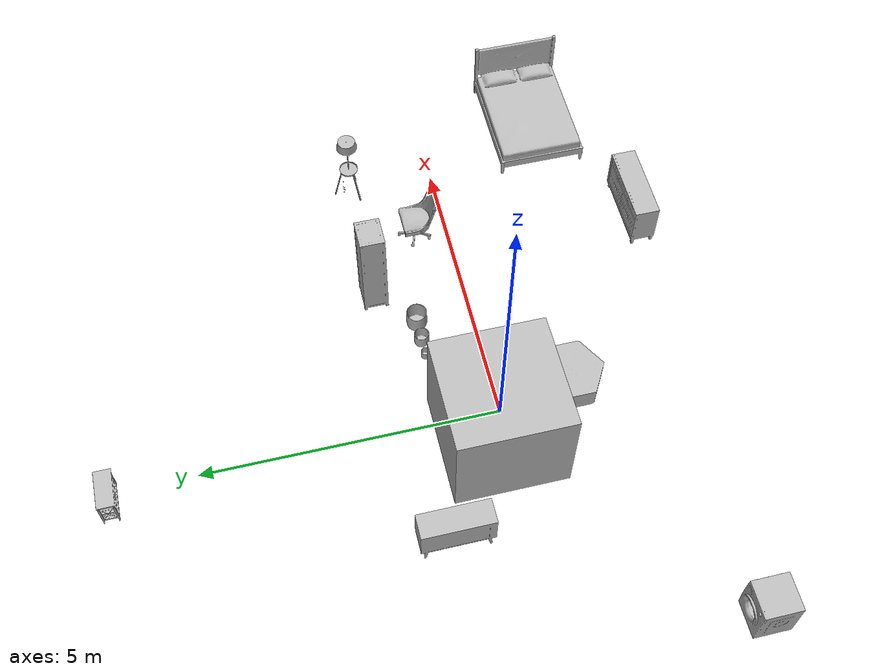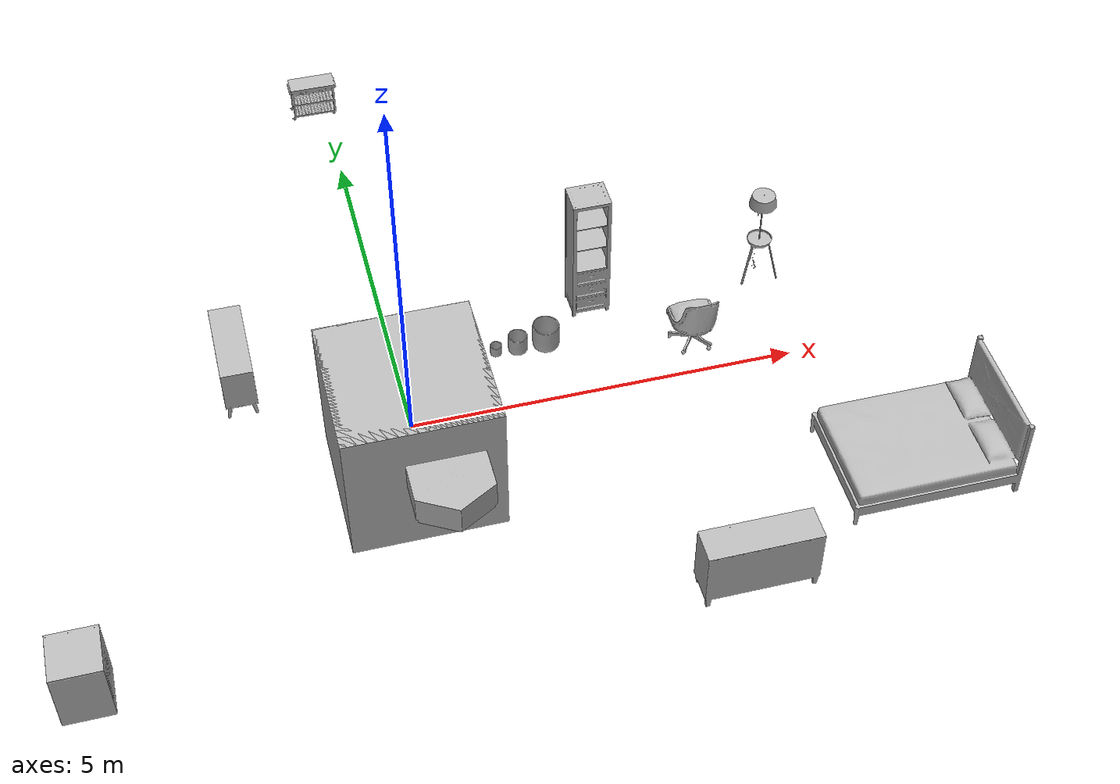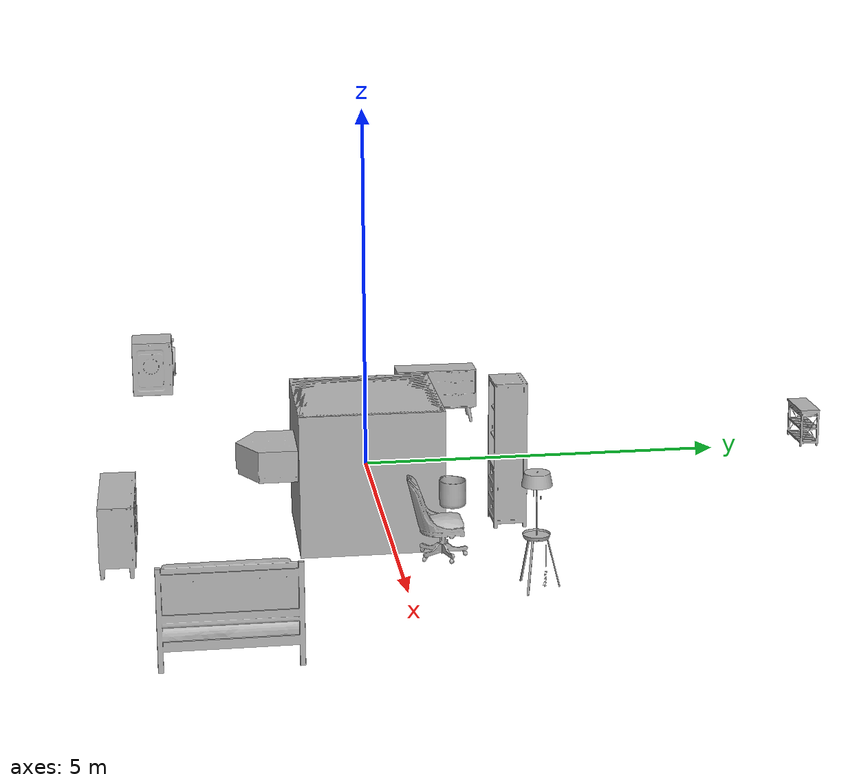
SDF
<sdf version="1.6">
 <world name="generation_vcmjltr6nh36_world_1">
  <include><uri>model://sun</uri></include>
  <model name="Beds_O1ebe36c65561_lod0_0">
   <include>
    <uri>model://Beds_O1ebe36c65561_lod0</uri>
    <pose>5.850100255012513 -2.100004768371582 0.0 0.0 0.0 4.71</pose>
    <static>true</static>
   </include>
  </model>
  <model name="HomeOfficeDeskChairs_Ocb2e8b1d1141_lod0_4">
   <include>
    <uri>model://HomeOfficeDeskChairs_Ocb2e8b1d1141_lod0</uri>
    <pose>3.8479110658168794 0.5558768510818481 0.0 0.0 0.0 3.1399999999999997</pose>
    <static>true</static>
   </include>
  </model>
  <model name="Bookcases_O2e667bbe14a2_lod0_7">
   <include>
    <uri>model://Bookcases_O2e667bbe14a2_lod0</uri>
    <pose>2.7 1.5500235363841057 0.0 0.0 0.0 0.0</pose>
    <static>true</static>
   </include>
  </model>
  <model name="Dressers_O8ca5eacdbd08_lod0_8">
   <include>
    <uri>model://Dressers_O8ca5eacdbd08_lod0</uri>
    <pose>3.4000000000000004 -3.3536212876439095 0.0 0.0 0.0 3.14</pose>
    <static>true</static>
   </include>
  </model>
  <model name="FloorLamps_O522eadaec3d5_lod0_10">
   <include>
    <uri>model://FloorLamps_O522eadaec3d5_lod0</uri>
    <pose>5.050667929649354 1.4976593434810639 0.0 0.0 0.0 0.0</pose>
    <static>true</static>
   </include>
  </model>
  <model name="CoffeeTables_Ob665b83f5366_lod0_12">
   <include>
    <uri>model://CoffeeTables_Ob665b83f5366_lod0</uri>
    <pose>0.25 -1.2499999701976776 0.0 0.0 0.0 0.0</pose>
    <static>true</static>
   </include>
  </model>
  <model name="AudioVideoMediaCabinets_Ocad952f94422_lod0_14">
   <include>
    <uri>model://AudioVideoMediaCabinets_Ocad952f94422_lod0</uri>
    <pose>-2.000070981681347 1.2500144243240356 0.0 0.0 0.0 1.57</pose>
    <static>true</static>
   </include>
  </model>
  <model name="HomeStorageBasketsBinsAndContainers_O45832f40a099_lod0_18">
   <include>
    <uri>model://HomeStorageBasketsBinsAndContainers_O45832f40a099_lod0</uri>
    <pose>1.6999870955944063 0.9503921389579774 0.0 0.0 0.0 4.71</pose>
    <static>true</static>
   </include>
  </model>
  <model name="ClothesWasher_a41462611906_lod0_21">
   <include>
    <uri>model://ClothesWasher_a41462611906_lod0</uri>
    <pose>-4.249838054180145 -2.9957533448934557 0.0 0.0 0.0 3.14</pose>
    <static>true</static>
   </include>
  </model>
  <model name="KitchenIslandsAndCarts_Of14cb38f9a68_lod0_25">
   <include>
    <uri>model://KitchenIslandsAndCarts_Of14cb38f9a68_lod0</uri>
    <pose>-0.16666080951690676 6.414728300273419 0.0 0.0 0.0 0.0</pose>
    <static>true</static>
   </include>
  </model>
  <model name="wall_0">
   <include><uri>model://generation_vcmjltr6nh36_world_1/wall_0</uri><static>true</static></include>
  </model>
  <model name="wall_1">
   <include><uri>model://generation_vcmjltr6nh36_world_1/wall_1</uri><static>true</static></include>
  </model>
  <model name="wall_10">
   <include><uri>model://generation_vcmjltr6nh36_world_1/wall_10</uri><static>true</static></include>
  </model>
  <model name="wall_11">
   <include><uri>model://generation_vcmjltr6nh36_world_1/wall_11</uri><static>true</static></include>
  </model>
  <model name="wall_12">
   <include><uri>model://generation_vcmjltr6nh36_world_1/wall_12</uri><static>true</static></include>
  </model>
  <model name="wall_13">
   <include><uri>model://generation_vcmjltr6nh36_world_1/wall_13</uri><static>true</static></include>
  </model>
  <model name="wall_14">
   <include><uri>model://generation_vcmjltr6nh36_world_1/wall_14</uri><static>true</static></include>
  </model>
  <model name="wall_15">
   <include><uri>model://generation_vcmjltr6nh36_world_1/wall_15</uri><static>true</static></include>
  </model>
  <model name="floor_Bedroom">
   <include><uri>model://generation_vcmjltr6nh36_world_1/floor_Bedroom</uri><static>true</static></include>
  </model>
  <model name="floor_Living room">
   <include><uri>model://generation_vcmjltr6nh36_world_1/floor_Living room</uri><static>true</static></include>
  </model>
  <model name="floor_Bathroom">
   <include><uri>model://generation_vcmjltr6nh36_world_1/floor_Bathroom</uri><static>true</static></include>
  </model>
  <model name="floor_Kitchen">
   <include><uri>model://generation_vcmjltr6nh36_world_1/floor_Kitchen</uri><static>true</static></include>
  </model>
 </world>
</sdf>

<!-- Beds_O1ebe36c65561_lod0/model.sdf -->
<sdf version="1.6">
	<model name="Beds_O1ebe36c65561_lod0">
		<link name="main_link">
			<visual name="visual_RootNode">
				<geometry>
					<mesh>
						<uri>model://Beds_O1ebe36c65561_lod0/meshes/visual_RootNode.dae</uri>
					</mesh>
				</geometry>
			</visual>
			<collision name="collision_RootNode_lod0_0">
				<geometry>
					<mesh>
						<uri>model://Beds_O1ebe36c65561_lod0/meshes/collision_RootNode_lod0_0.dae</uri>
					</mesh>
				</geometry>
			</collision>
		</link>
	</model>
</sdf>

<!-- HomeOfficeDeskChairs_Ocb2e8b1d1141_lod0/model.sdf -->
<sdf version="1.6">
	<model name="HomeOfficeDeskChairs_Ocb2e8b1d1141_lod0">
		<link name="main_link">
			<visual name="visual_RootNode">
				<geometry>
					<mesh>
						<uri>model://HomeOfficeDeskChairs_Ocb2e8b1d1141_lod0/meshes/visual_RootNode.dae</uri>
					</mesh>
				</geometry>
			</visual>
			<collision name="collision_RootNode_lod0_0">
				<geometry>
					<mesh>
						<uri>model://HomeOfficeDeskChairs_Ocb2e8b1d1141_lod0/meshes/collision_RootNode_lod0_0.dae</uri>
					</mesh>
				</geometry>
			</collision>
		</link>
	</model>
</sdf>

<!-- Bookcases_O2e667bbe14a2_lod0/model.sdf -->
<sdf version="1.6">
	<model name="Bookcases_O2e667bbe14a2_lod0">
		<link name="main_link">
			<visual name="visual_RootNode">
				<geometry>
					<mesh>
						<uri>model://Bookcases_O2e667bbe14a2_lod0/meshes/visual_RootNode.dae</uri>
					</mesh>
				</geometry>
			</visual>
			<collision name="collision_RootNode_lod0_0">
				<geometry>
					<mesh>
						<uri>model://Bookcases_O2e667bbe14a2_lod0/meshes/collision_RootNode_lod0_0.dae</uri>
					</mesh>
				</geometry>
			</collision>
		</link>
	</model>
</sdf>

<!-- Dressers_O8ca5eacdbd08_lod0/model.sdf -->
<sdf version="1.6">
	<model name="Dressers_O8ca5eacdbd08_lod0">
		<link name="main_link">
			<visual name="visual_RootNode">
				<geometry>
					<mesh>
						<uri>model://Dressers_O8ca5eacdbd08_lod0/meshes/visual_RootNode.dae</uri>
					</mesh>
				</geometry>
			</visual>
			<collision name="collision_RootNode_lod0_0">
				<geometry>
					<mesh>
						<uri>model://Dressers_O8ca5eacdbd08_lod0/meshes/collision_RootNode_lod0_0.dae</uri>
					</mesh>
				</geometry>
			</collision>
		</link>
	</model>
</sdf>

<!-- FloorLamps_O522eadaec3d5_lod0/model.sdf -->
<sdf version="1.6">
	<model name="FloorLamps_O522eadaec3d5_lod0">
		<link name="main_link">
			<visual name="visual_RootNode">
				<geometry>
					<mesh>
						<uri>model://FloorLamps_O522eadaec3d5_lod0/meshes/visual_RootNode.dae</uri>
					</mesh>
				</geometry>
			</visual>
			<collision name="collision_RootNode_lod0_0">
				<geometry>
					<mesh>
						<uri>model://FloorLamps_O522eadaec3d5_lod0/meshes/collision_RootNode_lod0_0.dae</uri>
					</mesh>
				</geometry>
			</collision>
		</link>
	</model>
</sdf>

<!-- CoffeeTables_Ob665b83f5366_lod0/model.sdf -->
<sdf version="1.6">
	<model name="CoffeeTables_Ob665b83f5366_lod0">
		<link name="main_link">
			<visual name="visual_RootNode">
				<geometry>
					<mesh>
						<uri>model://CoffeeTables_Ob665b83f5366_lod0/meshes/visual_RootNode.dae</uri>
					</mesh>
				</geometry>
			</visual>
			<collision name="collision_RootNode_lod0_0">
				<geometry>
					<mesh>
						<uri>model://CoffeeTables_Ob665b83f5366_lod0/meshes/collision_RootNode_lod0_0.dae</uri>
					</mesh>
				</geometry>
			</collision>
		</link>
	</model>
</sdf>

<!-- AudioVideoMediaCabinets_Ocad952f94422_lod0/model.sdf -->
<sdf version="1.6">
	<model name="AudioVideoMediaCabinets_Ocad952f94422_lod0">
		<link name="main_link">
			<visual name="visual_RootNode">
				<geometry>
					<mesh>
						<uri>model://AudioVideoMediaCabinets_Ocad952f94422_lod0/meshes/visual_RootNode.dae</uri>
					</mesh>
				</geometry>
			</visual>
			<collision name="collision_RootNode_lod0_0">
				<geometry>
					<mesh>
						<uri>model://AudioVideoMediaCabinets_Ocad952f94422_lod0/meshes/collision_RootNode_lod0_0.dae</uri>
					</mesh>
				</geometry>
			</collision>
		</link>
	</model>
</sdf>

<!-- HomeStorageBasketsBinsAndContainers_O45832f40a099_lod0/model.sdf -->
<sdf version="1.6">
	<model name="HomeStorageBasketsBinsAndContainers_O45832f40a099_lod0">
		<link name="main_link">
			<visual name="visual_RootNode">
				<geometry>
					<mesh>
						<uri>model://HomeStorageBasketsBinsAndContainers_O45832f40a099_lod0/meshes/visual_RootNode.dae</uri>
					</mesh>
				</geometry>
			</visual>
			<collision name="collision_RootNode_lod0_0">
				<geometry>
					<mesh>
						<uri>model://HomeStorageBasketsBinsAndContainers_O45832f40a099_lod0/meshes/collision_RootNode_lod0_0.dae</uri>
					</mesh>
				</geometry>
			</collision>
		</link>
	</model>
</sdf>

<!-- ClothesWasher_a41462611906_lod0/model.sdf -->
<sdf version='1.6'>
  <model name='17_ClothesWasher'>
    <link name='body'>
	  <inertial>
        <mass>60</mass>
        <pose frame=''>0 0 0 0 0 0</pose>
        <inertia>
          <ixx>5.8569999</ixx>
          <ixy>0</ixy>
          <ixz>0</ixz>
          <iyy>5.4125</iyy>
          <iyz>0</iyz>
          <izz>4.0445</izz>
        </inertia>
      </inertial>
      <pose frame=''>0 0 0 0 -0 0</pose>
      <self_collide>0</self_collide>
      <kinematic>0</kinematic>
      <gravity>1</gravity>
      <visual name='visual'>
        <geometry>
          <mesh>
            <uri>model://ClothesWasher_a41462611906_lod0/meshes/visual_LowPoly_17_ClothesWasher.dae</uri>
          </mesh>
        </geometry>
		<meta> <layer> 1 </layer></meta>
      </visual>
      <collision name='collision_0'>
        <laser_retro>0</laser_retro>
        <max_contacts>10</max_contacts>
        <pose frame=''>0 0 0 0 -0 0</pose>
        <geometry>
          <mesh>
            <uri>model://ClothesWasher_a41462611906_lod0/meshes/collision_17_ClothesWasher.dae</uri>
            <scale>1 1 1</scale>
          </mesh>
        </geometry>
		<surface>
          <friction>
            <ode>
              <mu>0.6</mu>
              <mu2>0.6</mu2>
              <fdir1>0 0 0</fdir1>
              <slip1>0</slip1>
              <slip2>0</slip2>
            </ode>
            <torsional>
              <coefficient>1</coefficient>
              <patch_radius>0</patch_radius>
              <surface_radius>0</surface_radius>
              <use_patch_radius>1</use_patch_radius>
              <ode>
                <slip>0</slip>
              </ode>
            </torsional>
          </friction>
        </surface>
      </collision>
    </link>
    <static>true</static>
  </model>
</sdf>

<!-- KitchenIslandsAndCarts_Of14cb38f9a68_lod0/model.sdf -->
<sdf version="1.6">
	<model name="KitchenIslandsAndCarts_Of14cb38f9a68_lod0">
		<link name="main_link">
			<visual name="visual_RootNode">
				<geometry>
					<mesh>
						<uri>model://KitchenIslandsAndCarts_Of14cb38f9a68_lod0/meshes/visual_RootNode.dae</uri>
					</mesh>
				</geometry>
			</visual>
			<collision name="collision_RootNode_lod0_0">
				<geometry>
					<mesh>
						<uri>model://KitchenIslandsAndCarts_Of14cb38f9a68_lod0/meshes/collision_RootNode_lod0_0.dae</uri>
					</mesh>
				</geometry>
			</collision>
		</link>
	</model>
</sdf>

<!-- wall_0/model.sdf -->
<sdf version="1.6">
  <model name="wall_0">
    <static>true</static>
    <link name="link">
      <collision name="collision">
        <pose>0 0 0 0 0 0</pose>
        <geometry>
          <mesh>
            <uri>model://generation_vcmjltr6nh36_world_1/wall_0/meshes/wall_0.dae</uri>
            <scale>1 1 1</scale>
          </mesh>
        </geometry>
      </collision>
      <visual name="visual">
        <meta>
          <layer>0</layer>
        </meta>
        <pose>0 0 0 0 0 0</pose>
        <geometry>
          <mesh>
            <uri>model://generation_vcmjltr6nh36_world_1/wall_0/meshes/wall_0.dae</uri>
            <scale>1 1 1</scale>
          </mesh>
        </geometry>
      </visual>
    </link>
  </model>
</sdf>

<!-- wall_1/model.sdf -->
<sdf version="1.6">
  <model name="wall_1">
    <static>true</static>
    <link name="link">
      <collision name="collision">
        <pose>0 0 0 0 0 0</pose>
        <geometry>
          <mesh>
            <uri>model://generation_vcmjltr6nh36_world_1/wall_1/meshes/wall_1.dae</uri>
            <scale>1 1 1</scale>
          </mesh>
        </geometry>
      </collision>
      <visual name="visual">
        <meta>
          <layer>0</layer>
        </meta>
        <pose>0 0 0 0 0 0</pose>
        <geometry>
          <mesh>
            <uri>model://generation_vcmjltr6nh36_world_1/wall_1/meshes/wall_1.dae</uri>
            <scale>1 1 1</scale>
          </mesh>
        </geometry>
      </visual>
    </link>
  </model>
</sdf>

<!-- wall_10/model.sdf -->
<sdf version="1.6">
  <model name="wall_10">
    <static>true</static>
    <link name="link">
      <collision name="collision">
        <pose>0 0 0 0 0 0</pose>
        <geometry>
          <mesh>
            <uri>model://generation_vcmjltr6nh36_world_1/wall_10/meshes/wall_10.dae</uri>
            <scale>1 1 1</scale>
          </mesh>
        </geometry>
      </collision>
      <visual name="visual">
        <meta>
          <layer>0</layer>
        </meta>
        <pose>0 0 0 0 0 0</pose>
        <geometry>
          <mesh>
            <uri>model://generation_vcmjltr6nh36_world_1/wall_10/meshes/wall_10.dae</uri>
            <scale>1 1 1</scale>
          </mesh>
        </geometry>
      </visual>
    </link>
  </model>
</sdf>

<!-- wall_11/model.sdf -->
<sdf version="1.6">
  <model name="wall_11">
    <static>true</static>
    <link name="link">
      <collision name="collision">
        <pose>0 0 0 0 0 0</pose>
        <geometry>
          <mesh>
            <uri>model://generation_vcmjltr6nh36_world_1/wall_11/meshes/wall_11.dae</uri>
            <scale>1 1 1</scale>
          </mesh>
        </geometry>
      </collision>
      <visual name="visual">
        <meta>
          <layer>0</layer>
        </meta>
        <pose>0 0 0 0 0 0</pose>
        <geometry>
          <mesh>
            <uri>model://generation_vcmjltr6nh36_world_1/wall_11/meshes/wall_11.dae</uri>
            <scale>1 1 1</scale>
          </mesh>
        </geometry>
      </visual>
    </link>
  </model>
</sdf>

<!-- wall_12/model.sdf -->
<sdf version="1.6">
  <model name="wall_12">
    <static>true</static>
    <link name="link">
      <collision name="collision">
        <pose>0 0 0 0 0 0</pose>
        <geometry>
          <mesh>
            <uri>model://generation_vcmjltr6nh36_world_1/wall_12/meshes/wall_12.dae</uri>
            <scale>1 1 1</scale>
          </mesh>
        </geometry>
      </collision>
      <visual name="visual">
        <meta>
          <layer>0</layer>
        </meta>
        <pose>0 0 0 0 0 0</pose>
        <geometry>
          <mesh>
            <uri>model://generation_vcmjltr6nh36_world_1/wall_12/meshes/wall_12.dae</uri>
            <scale>1 1 1</scale>
          </mesh>
        </geometry>
      </visual>
    </link>
  </model>
</sdf>

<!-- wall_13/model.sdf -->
<sdf version="1.6">
  <model name="wall_13">
    <static>true</static>
    <link name="link">
      <collision name="collision">
        <pose>0 0 0 0 0 0</pose>
        <geometry>
          <mesh>
            <uri>model://generation_vcmjltr6nh36_world_1/wall_13/meshes/wall_13.dae</uri>
            <scale>1 1 1</scale>
          </mesh>
        </geometry>
      </collision>
      <visual name="visual">
        <meta>
          <layer>0</layer>
        </meta>
        <pose>0 0 0 0 0 0</pose>
        <geometry>
          <mesh>
            <uri>model://generation_vcmjltr6nh36_world_1/wall_13/meshes/wall_13.dae</uri>
            <scale>1 1 1</scale>
          </mesh>
        </geometry>
      </visual>
    </link>
  </model>
</sdf>

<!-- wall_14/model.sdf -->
<sdf version="1.6">
  <model name="wall_14">
    <static>true</static>
    <link name="link">
      <collision name="collision">
        <pose>0 0 0 0 0 0</pose>
        <geometry>
          <mesh>
            <uri>model://generation_vcmjltr6nh36_world_1/wall_14/meshes/wall_14.dae</uri>
            <scale>1 1 1</scale>
          </mesh>
        </geometry>
      </collision>
      <visual name="visual">
        <meta>
          <layer>0</layer>
        </meta>
        <pose>0 0 0 0 0 0</pose>
        <geometry>
          <mesh>
            <uri>model://generation_vcmjltr6nh36_world_1/wall_14/meshes/wall_14.dae</uri>
            <scale>1 1 1</scale>
          </mesh>
        </geometry>
      </visual>
    </link>
  </model>
</sdf>

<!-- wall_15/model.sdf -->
<sdf version="1.6">
  <model name="wall_15">
    <static>true</static>
    <link name="link">
      <collision name="collision">
        <pose>0 0 0 0 0 0</pose>
        <geometry>
          <mesh>
            <uri>model://generation_vcmjltr6nh36_world_1/wall_15/meshes/wall_15.dae</uri>
            <scale>1 1 1</scale>
          </mesh>
        </geometry>
      </collision>
      <visual name="visual">
        <meta>
          <layer>0</layer>
        </meta>
        <pose>0 0 0 0 0 0</pose>
        <geometry>
          <mesh>
            <uri>model://generation_vcmjltr6nh36_world_1/wall_15/meshes/wall_15.dae</uri>
            <scale>1 1 1</scale>
          </mesh>
        </geometry>
      </visual>
    </link>
  </model>
</sdf>

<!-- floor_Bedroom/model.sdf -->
<sdf version="1.6">
  <model name="floor_Bedroom">
    <static>true</static>
    <link name="link">
      <collision name="collision">
        <pose>0 0 0 0 0 0</pose>
        <geometry>
          <mesh>
            <uri>model://generation_vcmjltr6nh36_world_1/floor_Bedroom/meshes/floor_Bedroom.dae</uri>
            <scale>1 1 1</scale>
          </mesh>
        </geometry>
      </collision>
      <visual name="visual">
        <meta>
          <layer>0</layer>
        </meta>
        <pose>0 0 0 0 0 0</pose>
        <geometry>
          <mesh>
            <uri>model://generation_vcmjltr6nh36_world_1/floor_Bedroom/meshes/floor_Bedroom.dae</uri>
            <scale>1 1 1</scale>
          </mesh>
        </geometry>
      </visual>
    </link>
  </model>
</sdf>

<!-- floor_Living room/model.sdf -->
<sdf version="1.6">
  <model name="floor_Living room">
    <static>true</static>
    <link name="link">
      <collision name="collision">
        <pose>0 0 0 0 0 0</pose>
        <geometry>
          <mesh>
            <uri>model://generation_vcmjltr6nh36_world_1/floor_Living room/meshes/floor_Living room.dae</uri>
            <scale>1 1 1</scale>
          </mesh>
        </geometry>
      </collision>
      <visual name="visual">
        <meta>
          <layer>0</layer>
        </meta>
        <pose>0 0 0 0 0 0</pose>
        <geometry>
          <mesh>
            <uri>model://generation_vcmjltr6nh36_world_1/floor_Living room/meshes/floor_Living room.dae</uri>
            <scale>1 1 1</scale>
          </mesh>
        </geometry>
      </visual>
    </link>
  </model>
</sdf>

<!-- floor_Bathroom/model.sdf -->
<sdf version="1.6">
  <model name="floor_Bathroom">
    <static>true</static>
    <link name="link">
      <collision name="collision">
        <pose>0 0 0 0 0 0</pose>
        <geometry>
          <mesh>
            <uri>model://generation_vcmjltr6nh36_world_1/floor_Bathroom/meshes/floor_Bathroom.dae</uri>
            <scale>1 1 1</scale>
          </mesh>
        </geometry>
      </collision>
      <visual name="visual">
        <meta>
          <layer>0</layer>
        </meta>
        <pose>0 0 0 0 0 0</pose>
        <geometry>
          <mesh>
            <uri>model://generation_vcmjltr6nh36_world_1/floor_Bathroom/meshes/floor_Bathroom.dae</uri>
            <scale>1 1 1</scale>
          </mesh>
        </geometry>
      </visual>
    </link>
  </model>
</sdf>

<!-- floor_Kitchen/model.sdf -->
<sdf version="1.6">
  <model name="floor_Kitchen">
    <static>true</static>
    <link name="link">
      <collision name="collision">
        <pose>0 0 0 0 0 0</pose>
        <geometry>
          <mesh>
            <uri>model://generation_vcmjltr6nh36_world_1/floor_Kitchen/meshes/floor_Kitchen.dae</uri>
            <scale>1 1 1</scale>
          </mesh>
        </geometry>
      </collision>
      <visual name="visual">
        <meta>
          <layer>0</layer>
        </meta>
        <pose>0 0 0 0 0 0</pose>
        <geometry>
          <mesh>
            <uri>model://generation_vcmjltr6nh36_world_1/floor_Kitchen/meshes/floor_Kitchen.dae</uri>
            <scale>1 1 1</scale>
          </mesh>
        </geometry>
      </visual>
    </link>
  </model>
</sdf>
